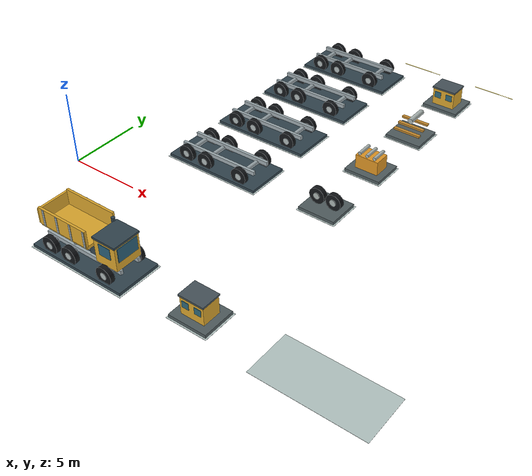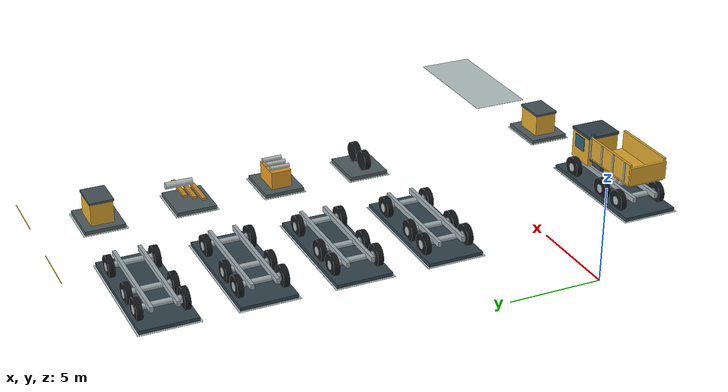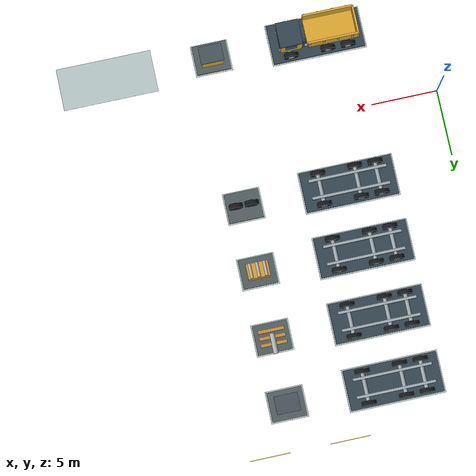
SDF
<sdf version="1.7">
 <world name="warehouse_layout_demo">
  <include><uri>model://sun</uri></include>
  <model name="vehicle_stage_4_line_4_se_pad">
   <static>true</static>
   <pose>8.0 -6.0 0.012 0 0 0</pose>
   <link name="marking">
    <visual name="visual">
     <geometry><box><size>7.2 3.2 0.012</size></box></geometry>
     <material><ambient>0.72 0.79 0.78 1</ambient><diffuse>0.72 0.79 0.78 1</diffuse></material>
    </visual>
   </link>
  </model>
  <model name="vehicle_stage_4_line_4_se">
   <static>true</static>
   <pose>8.0 -6.0 0 0 0 0</pose>
   <link name="fixture">
    <collision name="collision">
     <pose>0 0 1.9 0 0 0</pose>
     <geometry><box><size>7.0 3.0 3.8</size></box></geometry>
    </collision>
    <visual name="service_platform">
     <pose>0 0 0.11 0 0 0</pose>
     <geometry><box><size>7.0 3.0 0.22</size></box></geometry>
     <material><ambient>0.20 0.27 0.31 1</ambient><diffuse>0.20 0.27 0.31 1</diffuse></material>
    </visual>
    <visual name="chassis_rail_0">
     <pose>0 -0.66 0.85 0 0 0</pose>
     <geometry><box><size>5.9 0.19 0.28</size></box></geometry>
     <material><ambient>0.63 0.68 0.70 1</ambient><diffuse>0.63 0.68 0.70 1</diffuse></material>
    </visual>
    <visual name="haul_tire_0_0">
     <pose>-2.2 -1.18 0.63 1.57079632679 0 0</pose>
     <geometry><cylinder><radius>0.58</radius><length>0.32</length></cylinder></geometry>
     <material><ambient>0.08 0.09 0.10 1</ambient><diffuse>0.08 0.09 0.10 1</diffuse></material>
    </visual>
    <visual name="tire_hub_0_0">
     <pose>-2.2 -1.18 0.63 1.57079632679 0 0</pose>
     <geometry><cylinder><radius>0.23</radius><length>0.34</length></cylinder></geometry>
     <material><ambient>0.70 0.74 0.74 1</ambient><diffuse>0.70 0.74 0.74 1</diffuse></material>
    </visual>
    <visual name="haul_tire_0_1">
     <pose>-0.65 -1.18 0.63 1.57079632679 0 0</pose>
     <geometry><cylinder><radius>0.58</radius><length>0.32</length></cylinder></geometry>
     <material><ambient>0.08 0.09 0.10 1</ambient><diffuse>0.08 0.09 0.10 1</diffuse></material>
    </visual>
    <visual name="tire_hub_0_1">
     <pose>-0.65 -1.18 0.63 1.57079632679 0 0</pose>
     <geometry><cylinder><radius>0.23</radius><length>0.34</length></cylinder></geometry>
     <material><ambient>0.70 0.74 0.74 1</ambient><diffuse>0.70 0.74 0.74 1</diffuse></material>
    </visual>
    <visual name="haul_tire_0_2">
     <pose>2.15 -1.18 0.63 1.57079632679 0 0</pose>
     <geometry><cylinder><radius>0.58</radius><length>0.32</length></cylinder></geometry>
     <material><ambient>0.08 0.09 0.10 1</ambient><diffuse>0.08 0.09 0.10 1</diffuse></material>
    </visual>
    <visual name="tire_hub_0_2">
     <pose>2.15 -1.18 0.63 1.57079632679 0 0</pose>
     <geometry><cylinder><radius>0.23</radius><length>0.34</length></cylinder></geometry>
     <material><ambient>0.70 0.74 0.74 1</ambient><diffuse>0.70 0.74 0.74 1</diffuse></material>
    </visual>
    <visual name="chassis_rail_1">
     <pose>0 0.66 0.85 0 0 0</pose>
     <geometry><box><size>5.9 0.19 0.28</size></box></geometry>
     <material><ambient>0.63 0.68 0.70 1</ambient><diffuse>0.63 0.68 0.70 1</diffuse></material>
    </visual>
    <visual name="haul_tire_1_0">
     <pose>-2.2 1.18 0.63 1.57079632679 0 0</pose>
     <geometry><cylinder><radius>0.58</radius><length>0.32</length></cylinder></geometry>
     <material><ambient>0.08 0.09 0.10 1</ambient><diffuse>0.08 0.09 0.10 1</diffuse></material>
    </visual>
    <visual name="tire_hub_1_0">
     <pose>-2.2 1.18 0.63 1.57079632679 0 0</pose>
     <geometry><cylinder><radius>0.23</radius><length>0.34</length></cylinder></geometry>
     <material><ambient>0.70 0.74 0.74 1</ambient><diffuse>0.70 0.74 0.74 1</diffuse></material>
    </visual>
    <visual name="haul_tire_1_1">
     <pose>-0.65 1.18 0.63 1.57079632679 0 0</pose>
     <geometry><cylinder><radius>0.58</radius><length>0.32</length></cylinder></geometry>
     <material><ambient>0.08 0.09 0.10 1</ambient><diffuse>0.08 0.09 0.10 1</diffuse></material>
    </visual>
    <visual name="tire_hub_1_1">
     <pose>-0.65 1.18 0.63 1.57079632679 0 0</pose>
     <geometry><cylinder><radius>0.23</radius><length>0.34</length></cylinder></geometry>
     <material><ambient>0.70 0.74 0.74 1</ambient><diffuse>0.70 0.74 0.74 1</diffuse></material>
    </visual>
    <visual name="haul_tire_1_2">
     <pose>2.15 1.18 0.63 1.57079632679 0 0</pose>
     <geometry><cylinder><radius>0.58</radius><length>0.32</length></cylinder></geometry>
     <material><ambient>0.08 0.09 0.10 1</ambient><diffuse>0.08 0.09 0.10 1</diffuse></material>
    </visual>
    <visual name="tire_hub_1_2">
     <pose>2.15 1.18 0.63 1.57079632679 0 0</pose>
     <geometry><cylinder><radius>0.23</radius><length>0.34</length></cylinder></geometry>
     <material><ambient>0.70 0.74 0.74 1</ambient><diffuse>0.70 0.74 0.74 1</diffuse></material>
    </visual>
    <visual name="drive_axle_0">
     <pose>-2.2 0 0.68 1.57079632679 0 0</pose>
     <geometry><cylinder><radius>0.15</radius><length>2.38</length></cylinder></geometry>
     <material><ambient>0.63 0.68 0.70 1</ambient><diffuse>0.63 0.68 0.70 1</diffuse></material>
    </visual>
    <visual name="drive_axle_1">
     <pose>-0.65 0 0.68 1.57079632679 0 0</pose>
     <geometry><cylinder><radius>0.15</radius><length>2.38</length></cylinder></geometry>
     <material><ambient>0.63 0.68 0.70 1</ambient><diffuse>0.63 0.68 0.70 1</diffuse></material>
    </visual>
    <visual name="drive_axle_2">
     <pose>2.15 0 0.68 1.57079632679 0 0</pose>
     <geometry><cylinder><radius>0.15</radius><length>2.38</length></cylinder></geometry>
     <material><ambient>0.63 0.68 0.70 1</ambient><diffuse>0.63 0.68 0.70 1</diffuse></material>
    </visual>
    <visual name="diesel_engine">
     <pose>1.15 0 1.26 0 0 0</pose>
     <geometry><box><size>1.38 1.22 0.83</size></box></geometry>
     <material><ambient>0.20 0.27 0.31 1</ambient><diffuse>0.20 0.27 0.31 1</diffuse></material>
    </visual>
    <visual name="gearbox">
     <pose>0.08 0 1.12 0 0 0</pose>
     <geometry><box><size>0.82 0.76 0.6</size></box></geometry>
     <material><ambient>0.63 0.68 0.70 1</ambient><diffuse>0.63 0.68 0.70 1</diffuse></material>
    </visual>
    <visual name="radiator_fan">
     <pose>1.98 0 1.29 1.57079632679 0 0</pose>
     <geometry><cylinder><radius>0.41</radius><length>0.15</length></cylinder></geometry>
     <material><ambient>0.76 0.80 0.79 1</ambient><diffuse>0.76 0.80 0.79 1</diffuse></material>
    </visual>
    <visual name="operator_cab">
     <pose>2.08 0 1.82 0 0 0</pose>
     <geometry><box><size>1.6 1.83 1.62</size></box></geometry>
     <material><ambient>0.87 0.66 0.18 1</ambient><diffuse>0.87 0.66 0.18 1</diffuse></material>
    </visual>
    <visual name="cab_roof">
     <pose>2.08 0 2.66 0 0 0</pose>
     <geometry><box><size>1.72 1.91 0.14</size></box></geometry>
     <material><ambient>0.20 0.27 0.31 1</ambient><diffuse>0.20 0.27 0.31 1</diffuse></material>
    </visual>
    <visual name="windshield">
     <pose>2.91 0 2.03 0 0 0</pose>
     <geometry><box><size>0.045 1.48 0.91</size></box></geometry>
     <material><ambient>0.17 0.38 0.48 1</ambient><diffuse>0.17 0.38 0.48 1</diffuse></material>
    </visual>
    <visual name="exhaust_stack">
     <pose>1.14 0.76 2.15 0.0 0 0</pose>
     <geometry><cylinder><radius>0.12</radius><length>1.57</length></cylinder></geometry>
     <material><ambient>0.20 0.27 0.31 1</ambient><diffuse>0.20 0.27 0.31 1</diffuse></material>
    </visual>
    <visual name="cab_side_glass_0">
     <pose>2.11 -0.95 2.08 0 0 0</pose>
     <geometry><box><size>0.87 0.035 0.76</size></box></geometry>
     <material><ambient>0.17 0.38 0.48 1</ambient><diffuse>0.17 0.38 0.48 1</diffuse></material>
    </visual>
    <visual name="cab_side_glass_1">
     <pose>2.11 0.95 2.08 0 0 0</pose>
     <geometry><box><size>0.87 0.035 0.76</size></box></geometry>
     <material><ambient>0.17 0.38 0.48 1</ambient><diffuse>0.17 0.38 0.48 1</diffuse></material>
    </visual>
    <visual name="dump_bed_floor">
     <pose>-1.01 0 1.78 0 0 0</pose>
     <geometry><box><size>3.75 2.15 0.22</size></box></geometry>
     <material><ambient>0.87 0.66 0.18 1</ambient><diffuse>0.87 0.66 0.18 1</diffuse></material>
    </visual>
    <visual name="dump_bed_side_0">
     <pose>-1.01 -1.05 2.37 0 0 0</pose>
     <geometry><box><size>3.75 0.15 1.15</size></box></geometry>
     <material><ambient>0.87 0.66 0.18 1</ambient><diffuse>0.87 0.66 0.18 1</diffuse></material>
    </visual>
    <visual name="bed_rib_0_0">
     <pose>-2.46 -1.1235000000000002 2.37 0 0 0</pose>
     <geometry><box><size>0.13 0.08 1.1</size></box></geometry>
     <material><ambient>0.63 0.68 0.70 1</ambient><diffuse>0.63 0.68 0.70 1</diffuse></material>
    </visual>
    <visual name="bed_rib_0_1">
     <pose>-1.39 -1.1235000000000002 2.37 0 0 0</pose>
     <geometry><box><size>0.13 0.08 1.1</size></box></geometry>
     <material><ambient>0.63 0.68 0.70 1</ambient><diffuse>0.63 0.68 0.70 1</diffuse></material>
    </visual>
    <visual name="bed_rib_0_2">
     <pose>-0.32 -1.1235000000000002 2.37 0 0 0</pose>
     <geometry><box><size>0.13 0.08 1.1</size></box></geometry>
     <material><ambient>0.63 0.68 0.70 1</ambient><diffuse>0.63 0.68 0.70 1</diffuse></material>
    </visual>
    <visual name="bed_rib_0_3">
     <pose>0.75 -1.1235000000000002 2.37 0 0 0</pose>
     <geometry><box><size>0.13 0.08 1.1</size></box></geometry>
     <material><ambient>0.63 0.68 0.70 1</ambient><diffuse>0.63 0.68 0.70 1</diffuse></material>
    </visual>
    <visual name="dump_bed_side_1">
     <pose>-1.01 1.05 2.37 0 0 0</pose>
     <geometry><box><size>3.75 0.15 1.15</size></box></geometry>
     <material><ambient>0.87 0.66 0.18 1</ambient><diffuse>0.87 0.66 0.18 1</diffuse></material>
    </visual>
    <visual name="bed_rib_1_0">
     <pose>-2.46 1.1235000000000002 2.37 0 0 0</pose>
     <geometry><box><size>0.13 0.08 1.1</size></box></geometry>
     <material><ambient>0.63 0.68 0.70 1</ambient><diffuse>0.63 0.68 0.70 1</diffuse></material>
    </visual>
    <visual name="bed_rib_1_1">
     <pose>-1.39 1.1235000000000002 2.37 0 0 0</pose>
     <geometry><box><size>0.13 0.08 1.1</size></box></geometry>
     <material><ambient>0.63 0.68 0.70 1</ambient><diffuse>0.63 0.68 0.70 1</diffuse></material>
    </visual>
    <visual name="bed_rib_1_2">
     <pose>-0.32 1.1235000000000002 2.37 0 0 0</pose>
     <geometry><box><size>0.13 0.08 1.1</size></box></geometry>
     <material><ambient>0.63 0.68 0.70 1</ambient><diffuse>0.63 0.68 0.70 1</diffuse></material>
    </visual>
    <visual name="bed_rib_1_3">
     <pose>0.75 1.1235000000000002 2.37 0 0 0</pose>
     <geometry><box><size>0.13 0.08 1.1</size></box></geometry>
     <material><ambient>0.63 0.68 0.70 1</ambient><diffuse>0.63 0.68 0.70 1</diffuse></material>
    </visual>
    <visual name="rear_gate">
     <pose>-2.93 0 2.29 0 0 0</pose>
     <geometry><box><size>0.15 2.2 1.0</size></box></geometry>
     <material><ambient>0.87 0.66 0.18 1</ambient><diffuse>0.87 0.66 0.18 1</diffuse></material>
    </visual>
    <visual name="hydraulic_lift_left">
     <pose>-0.78 -0.48 1.37 0.0 0 0</pose>
     <geometry><cylinder><radius>0.18</radius><length>1.0</length></cylinder></geometry>
     <material><ambient>0.63 0.68 0.70 1</ambient><diffuse>0.63 0.68 0.70 1</diffuse></material>
    </visual>
    <visual name="hydraulic_lift_right">
     <pose>-0.78 0.48 1.37 0.0 0 0</pose>
     <geometry><cylinder><radius>0.18</radius><length>1.0</length></cylinder></geometry>
     <material><ambient>0.63 0.68 0.70 1</ambient><diffuse>0.63 0.68 0.70 1</diffuse></material>
    </visual>
   </link>
  </model>
  <model name="vehicle_stage_5_line_4_se_pad">
   <static>true</static>
   <pose>24.0 -6.0 0.012 0 0 0</pose>
   <link name="marking">
    <visual name="visual">
     <geometry><box><size>7.2 3.2 0.012</size></box></geometry>
     <material><ambient>0.72 0.79 0.78 1</ambient><diffuse>0.72 0.79 0.78 1</diffuse></material>
    </visual>
   </link>
  </model>
  <model name="assembly_kit_1_line_4_se_pad">
   <static>true</static>
   <pose>16.0 -6.0 0.012 0 0 0</pose>
   <link name="marking">
    <visual name="visual">
     <geometry><box><size>2.8000000000000003 2.4000000000000004 0.012</size></box></geometry>
     <material><ambient>0.72 0.79 0.78 1</ambient><diffuse>0.72 0.79 0.78 1</diffuse></material>
    </visual>
   </link>
  </model>
  <model name="assembly_kit_1_line_4_se">
   <static>true</static>
   <pose>16.0 -6.0 0 0 0 0</pose>
   <link name="fixture">
    <collision name="collision">
     <pose>0 0 0.95 0 0 0</pose>
     <geometry><box><size>2.6 2.2 1.9</size></box></geometry>
    </collision>
    <visual name="kit_frame">
     <pose>0 0 0.12 0 0 0</pose>
     <geometry><box><size>2.6 2.2 0.24</size></box></geometry>
     <material><ambient>0.32 0.37 0.38 1</ambient><diffuse>0.32 0.37 0.38 1</diffuse></material>
    </visual>
    <visual name="cab_module">
     <pose>0 0 0.8 0 0 0</pose>
     <geometry><box><size>1.62 1.25 1.35</size></box></geometry>
     <material><ambient>0.87 0.66 0.18 1</ambient><diffuse>0.87 0.66 0.18 1</diffuse></material>
    </visual>
    <visual name="cab_window_0">
     <pose>-0.43 -0.64 1.02 0 0 0</pose>
     <geometry><box><size>0.47 0.03 0.45</size></box></geometry>
     <material><ambient>0.19 0.41 0.47 1</ambient><diffuse>0.19 0.41 0.47 1</diffuse></material>
    </visual>
    <visual name="cab_window_1">
     <pose>0.43 -0.64 1.02 0 0 0</pose>
     <geometry><box><size>0.47 0.03 0.45</size></box></geometry>
     <material><ambient>0.19 0.41 0.47 1</ambient><diffuse>0.19 0.41 0.47 1</diffuse></material>
    </visual>
    <visual name="cab_roof">
     <pose>0 0 1.52 0 0 0</pose>
     <geometry><box><size>1.75 1.34 0.12</size></box></geometry>
     <material><ambient>0.28 0.33 0.36 1</ambient><diffuse>0.28 0.33 0.36 1</diffuse></material>
    </visual>
   </link>
  </model>
  <model name="vehicle_stage_1_line_1_ne_pad">
   <static>true</static>
   <pose>8.0 5.5 0.012 0 0 0</pose>
   <link name="marking">
    <visual name="visual">
     <geometry><box><size>7.2 3.2 0.012</size></box></geometry>
     <material><ambient>0.72 0.79 0.78 1</ambient><diffuse>0.72 0.79 0.78 1</diffuse></material>
    </visual>
   </link>
  </model>
  <model name="vehicle_stage_1_line_1_ne">
   <static>true</static>
   <pose>8.0 5.5 0 0 0 0</pose>
   <link name="fixture">
    <collision name="collision">
     <pose>0 0 1.9 0 0 0</pose>
     <geometry><box><size>7.0 3.0 3.8</size></box></geometry>
    </collision>
    <visual name="service_platform">
     <pose>0 0 0.11 0 0 0</pose>
     <geometry><box><size>7.0 3.0 0.22</size></box></geometry>
     <material><ambient>0.20 0.27 0.31 1</ambient><diffuse>0.20 0.27 0.31 1</diffuse></material>
    </visual>
    <visual name="chassis_rail_0">
     <pose>0 -0.66 0.85 0 0 0</pose>
     <geometry><box><size>5.9 0.19 0.28</size></box></geometry>
     <material><ambient>0.63 0.68 0.70 1</ambient><diffuse>0.63 0.68 0.70 1</diffuse></material>
    </visual>
    <visual name="haul_tire_0_0">
     <pose>-2.2 -1.18 0.63 1.57079632679 0 0</pose>
     <geometry><cylinder><radius>0.58</radius><length>0.32</length></cylinder></geometry>
     <material><ambient>0.08 0.09 0.10 1</ambient><diffuse>0.08 0.09 0.10 1</diffuse></material>
    </visual>
    <visual name="tire_hub_0_0">
     <pose>-2.2 -1.18 0.63 1.57079632679 0 0</pose>
     <geometry><cylinder><radius>0.23</radius><length>0.34</length></cylinder></geometry>
     <material><ambient>0.70 0.74 0.74 1</ambient><diffuse>0.70 0.74 0.74 1</diffuse></material>
    </visual>
    <visual name="haul_tire_0_1">
     <pose>-0.65 -1.18 0.63 1.57079632679 0 0</pose>
     <geometry><cylinder><radius>0.58</radius><length>0.32</length></cylinder></geometry>
     <material><ambient>0.08 0.09 0.10 1</ambient><diffuse>0.08 0.09 0.10 1</diffuse></material>
    </visual>
    <visual name="tire_hub_0_1">
     <pose>-0.65 -1.18 0.63 1.57079632679 0 0</pose>
     <geometry><cylinder><radius>0.23</radius><length>0.34</length></cylinder></geometry>
     <material><ambient>0.70 0.74 0.74 1</ambient><diffuse>0.70 0.74 0.74 1</diffuse></material>
    </visual>
    <visual name="haul_tire_0_2">
     <pose>2.15 -1.18 0.63 1.57079632679 0 0</pose>
     <geometry><cylinder><radius>0.58</radius><length>0.32</length></cylinder></geometry>
     <material><ambient>0.08 0.09 0.10 1</ambient><diffuse>0.08 0.09 0.10 1</diffuse></material>
    </visual>
    <visual name="tire_hub_0_2">
     <pose>2.15 -1.18 0.63 1.57079632679 0 0</pose>
     <geometry><cylinder><radius>0.23</radius><length>0.34</length></cylinder></geometry>
     <material><ambient>0.70 0.74 0.74 1</ambient><diffuse>0.70 0.74 0.74 1</diffuse></material>
    </visual>
    <visual name="chassis_rail_1">
     <pose>0 0.66 0.85 0 0 0</pose>
     <geometry><box><size>5.9 0.19 0.28</size></box></geometry>
     <material><ambient>0.63 0.68 0.70 1</ambient><diffuse>0.63 0.68 0.70 1</diffuse></material>
    </visual>
    <visual name="haul_tire_1_0">
     <pose>-2.2 1.18 0.63 1.57079632679 0 0</pose>
     <geometry><cylinder><radius>0.58</radius><length>0.32</length></cylinder></geometry>
     <material><ambient>0.08 0.09 0.10 1</ambient><diffuse>0.08 0.09 0.10 1</diffuse></material>
    </visual>
    <visual name="tire_hub_1_0">
     <pose>-2.2 1.18 0.63 1.57079632679 0 0</pose>
     <geometry><cylinder><radius>0.23</radius><length>0.34</length></cylinder></geometry>
     <material><ambient>0.70 0.74 0.74 1</ambient><diffuse>0.70 0.74 0.74 1</diffuse></material>
    </visual>
    <visual name="haul_tire_1_1">
     <pose>-0.65 1.18 0.63 1.57079632679 0 0</pose>
     <geometry><cylinder><radius>0.58</radius><length>0.32</length></cylinder></geometry>
     <material><ambient>0.08 0.09 0.10 1</ambient><diffuse>0.08 0.09 0.10 1</diffuse></material>
    </visual>
    <visual name="tire_hub_1_1">
     <pose>-0.65 1.18 0.63 1.57079632679 0 0</pose>
     <geometry><cylinder><radius>0.23</radius><length>0.34</length></cylinder></geometry>
     <material><ambient>0.70 0.74 0.74 1</ambient><diffuse>0.70 0.74 0.74 1</diffuse></material>
    </visual>
    <visual name="haul_tire_1_2">
     <pose>2.15 1.18 0.63 1.57079632679 0 0</pose>
     <geometry><cylinder><radius>0.58</radius><length>0.32</length></cylinder></geometry>
     <material><ambient>0.08 0.09 0.10 1</ambient><diffuse>0.08 0.09 0.10 1</diffuse></material>
    </visual>
    <visual name="tire_hub_1_2">
     <pose>2.15 1.18 0.63 1.57079632679 0 0</pose>
     <geometry><cylinder><radius>0.23</radius><length>0.34</length></cylinder></geometry>
     <material><ambient>0.70 0.74 0.74 1</ambient><diffuse>0.70 0.74 0.74 1</diffuse></material>
    </visual>
    <visual name="drive_axle_0">
     <pose>-2.2 0 0.68 1.57079632679 0 0</pose>
     <geometry><cylinder><radius>0.15</radius><length>2.38</length></cylinder></geometry>
     <material><ambient>0.63 0.68 0.70 1</ambient><diffuse>0.63 0.68 0.70 1</diffuse></material>
    </visual>
    <visual name="drive_axle_1">
     <pose>-0.65 0 0.68 1.57079632679 0 0</pose>
     <geometry><cylinder><radius>0.15</radius><length>2.38</length></cylinder></geometry>
     <material><ambient>0.63 0.68 0.70 1</ambient><diffuse>0.63 0.68 0.70 1</diffuse></material>
    </visual>
    <visual name="drive_axle_2">
     <pose>2.15 0 0.68 1.57079632679 0 0</pose>
     <geometry><cylinder><radius>0.15</radius><length>2.38</length></cylinder></geometry>
     <material><ambient>0.63 0.68 0.70 1</ambient><diffuse>0.63 0.68 0.70 1</diffuse></material>
    </visual>
   </link>
  </model>
  <model name="assembly_kit_1_line_1_ne_pad">
   <static>true</static>
   <pose>16.0 5.5 0.012 0 0 0</pose>
   <link name="marking">
    <visual name="visual">
     <geometry><box><size>2.8000000000000003 2.4000000000000004 0.012</size></box></geometry>
     <material><ambient>0.72 0.79 0.78 1</ambient><diffuse>0.72 0.79 0.78 1</diffuse></material>
    </visual>
   </link>
  </model>
  <model name="assembly_kit_1_line_1_ne">
   <static>true</static>
   <pose>16.0 5.5 0 0 0 0</pose>
   <link name="fixture">
    <collision name="collision">
     <pose>0 0 0.95 0 0 0</pose>
     <geometry><box><size>2.6 2.2 1.9</size></box></geometry>
    </collision>
    <visual name="kit_frame">
     <pose>0 0 0.12 0 0 0</pose>
     <geometry><box><size>2.6 2.2 0.24</size></box></geometry>
     <material><ambient>0.32 0.37 0.38 1</ambient><diffuse>0.32 0.37 0.38 1</diffuse></material>
    </visual>
    <visual name="spare_tire_0">
     <pose>-0.6 0 0.8 1.57079632679 0 0</pose>
     <geometry><cylinder><radius>0.55</radius><length>0.35</length></cylinder></geometry>
     <material><ambient>0.08 0.09 0.10 1</ambient><diffuse>0.08 0.09 0.10 1</diffuse></material>
    </visual>
    <visual name="tire_hub_0">
     <pose>-0.6 -0.2 0.8 1.57079632679 0 0</pose>
     <geometry><cylinder><radius>0.22</radius><length>0.05</length></cylinder></geometry>
     <material><ambient>0.69 0.73 0.72 1</ambient><diffuse>0.69 0.73 0.72 1</diffuse></material>
    </visual>
    <visual name="spare_tire_1">
     <pose>0.6 0 0.8 1.57079632679 0 0</pose>
     <geometry><cylinder><radius>0.55</radius><length>0.35</length></cylinder></geometry>
     <material><ambient>0.08 0.09 0.10 1</ambient><diffuse>0.08 0.09 0.10 1</diffuse></material>
    </visual>
    <visual name="tire_hub_1">
     <pose>0.6 -0.2 0.8 1.57079632679 0 0</pose>
     <geometry><cylinder><radius>0.22</radius><length>0.05</length></cylinder></geometry>
     <material><ambient>0.69 0.73 0.72 1</ambient><diffuse>0.69 0.73 0.72 1</diffuse></material>
    </visual>
   </link>
  </model>
  <model name="vehicle_stage_1_line_2_ne_pad">
   <static>true</static>
   <pose>8.0 10.5 0.012 0 0 0</pose>
   <link name="marking">
    <visual name="visual">
     <geometry><box><size>7.2 3.2 0.012</size></box></geometry>
     <material><ambient>0.72 0.79 0.78 1</ambient><diffuse>0.72 0.79 0.78 1</diffuse></material>
    </visual>
   </link>
  </model>
  <model name="vehicle_stage_1_line_2_ne">
   <static>true</static>
   <pose>8.0 10.5 0 0 0 0</pose>
   <link name="fixture">
    <collision name="collision">
     <pose>0 0 1.9 0 0 0</pose>
     <geometry><box><size>7.0 3.0 3.8</size></box></geometry>
    </collision>
    <visual name="service_platform">
     <pose>0 0 0.11 0 0 0</pose>
     <geometry><box><size>7.0 3.0 0.22</size></box></geometry>
     <material><ambient>0.20 0.27 0.31 1</ambient><diffuse>0.20 0.27 0.31 1</diffuse></material>
    </visual>
    <visual name="chassis_rail_0">
     <pose>0 -0.66 0.85 0 0 0</pose>
     <geometry><box><size>5.9 0.19 0.28</size></box></geometry>
     <material><ambient>0.63 0.68 0.70 1</ambient><diffuse>0.63 0.68 0.70 1</diffuse></material>
    </visual>
    <visual name="haul_tire_0_0">
     <pose>-2.2 -1.18 0.63 1.57079632679 0 0</pose>
     <geometry><cylinder><radius>0.58</radius><length>0.32</length></cylinder></geometry>
     <material><ambient>0.08 0.09 0.10 1</ambient><diffuse>0.08 0.09 0.10 1</diffuse></material>
    </visual>
    <visual name="tire_hub_0_0">
     <pose>-2.2 -1.18 0.63 1.57079632679 0 0</pose>
     <geometry><cylinder><radius>0.23</radius><length>0.34</length></cylinder></geometry>
     <material><ambient>0.70 0.74 0.74 1</ambient><diffuse>0.70 0.74 0.74 1</diffuse></material>
    </visual>
    <visual name="haul_tire_0_1">
     <pose>-0.65 -1.18 0.63 1.57079632679 0 0</pose>
     <geometry><cylinder><radius>0.58</radius><length>0.32</length></cylinder></geometry>
     <material><ambient>0.08 0.09 0.10 1</ambient><diffuse>0.08 0.09 0.10 1</diffuse></material>
    </visual>
    <visual name="tire_hub_0_1">
     <pose>-0.65 -1.18 0.63 1.57079632679 0 0</pose>
     <geometry><cylinder><radius>0.23</radius><length>0.34</length></cylinder></geometry>
     <material><ambient>0.70 0.74 0.74 1</ambient><diffuse>0.70 0.74 0.74 1</diffuse></material>
    </visual>
    <visual name="haul_tire_0_2">
     <pose>2.15 -1.18 0.63 1.57079632679 0 0</pose>
     <geometry><cylinder><radius>0.58</radius><length>0.32</length></cylinder></geometry>
     <material><ambient>0.08 0.09 0.10 1</ambient><diffuse>0.08 0.09 0.10 1</diffuse></material>
    </visual>
    <visual name="tire_hub_0_2">
     <pose>2.15 -1.18 0.63 1.57079632679 0 0</pose>
     <geometry><cylinder><radius>0.23</radius><length>0.34</length></cylinder></geometry>
     <material><ambient>0.70 0.74 0.74 1</ambient><diffuse>0.70 0.74 0.74 1</diffuse></material>
    </visual>
    <visual name="chassis_rail_1">
     <pose>0 0.66 0.85 0 0 0</pose>
     <geometry><box><size>5.9 0.19 0.28</size></box></geometry>
     <material><ambient>0.63 0.68 0.70 1</ambient><diffuse>0.63 0.68 0.70 1</diffuse></material>
    </visual>
    <visual name="haul_tire_1_0">
     <pose>-2.2 1.18 0.63 1.57079632679 0 0</pose>
     <geometry><cylinder><radius>0.58</radius><length>0.32</length></cylinder></geometry>
     <material><ambient>0.08 0.09 0.10 1</ambient><diffuse>0.08 0.09 0.10 1</diffuse></material>
    </visual>
    <visual name="tire_hub_1_0">
     <pose>-2.2 1.18 0.63 1.57079632679 0 0</pose>
     <geometry><cylinder><radius>0.23</radius><length>0.34</length></cylinder></geometry>
     <material><ambient>0.70 0.74 0.74 1</ambient><diffuse>0.70 0.74 0.74 1</diffuse></material>
    </visual>
    <visual name="haul_tire_1_1">
     <pose>-0.65 1.18 0.63 1.57079632679 0 0</pose>
     <geometry><cylinder><radius>0.58</radius><length>0.32</length></cylinder></geometry>
     <material><ambient>0.08 0.09 0.10 1</ambient><diffuse>0.08 0.09 0.10 1</diffuse></material>
    </visual>
    <visual name="tire_hub_1_1">
     <pose>-0.65 1.18 0.63 1.57079632679 0 0</pose>
     <geometry><cylinder><radius>0.23</radius><length>0.34</length></cylinder></geometry>
     <material><ambient>0.70 0.74 0.74 1</ambient><diffuse>0.70 0.74 0.74 1</diffuse></material>
    </visual>
    <visual name="haul_tire_1_2">
     <pose>2.15 1.18 0.63 1.57079632679 0 0</pose>
     <geometry><cylinder><radius>0.58</radius><length>0.32</length></cylinder></geometry>
     <material><ambient>0.08 0.09 0.10 1</ambient><diffuse>0.08 0.09 0.10 1</diffuse></material>
    </visual>
    <visual name="tire_hub_1_2">
     <pose>2.15 1.18 0.63 1.57079632679 0 0</pose>
     <geometry><cylinder><radius>0.23</radius><length>0.34</length></cylinder></geometry>
     <material><ambient>0.70 0.74 0.74 1</ambient><diffuse>0.70 0.74 0.74 1</diffuse></material>
    </visual>
    <visual name="drive_axle_0">
     <pose>-2.2 0 0.68 1.57079632679 0 0</pose>
     <geometry><cylinder><radius>0.15</radius><length>2.38</length></cylinder></geometry>
     <material><ambient>0.63 0.68 0.70 1</ambient><diffuse>0.63 0.68 0.70 1</diffuse></material>
    </visual>
    <visual name="drive_axle_1">
     <pose>-0.65 0 0.68 1.57079632679 0 0</pose>
     <geometry><cylinder><radius>0.15</radius><length>2.38</length></cylinder></geometry>
     <material><ambient>0.63 0.68 0.70 1</ambient><diffuse>0.63 0.68 0.70 1</diffuse></material>
    </visual>
    <visual name="drive_axle_2">
     <pose>2.15 0 0.68 1.57079632679 0 0</pose>
     <geometry><cylinder><radius>0.15</radius><length>2.38</length></cylinder></geometry>
     <material><ambient>0.63 0.68 0.70 1</ambient><diffuse>0.63 0.68 0.70 1</diffuse></material>
    </visual>
   </link>
  </model>
  <model name="assembly_kit_1_line_2_ne_pad">
   <static>true</static>
   <pose>16.0 10.5 0.012 0 0 0</pose>
   <link name="marking">
    <visual name="visual">
     <geometry><box><size>2.8000000000000003 2.4000000000000004 0.012</size></box></geometry>
     <material><ambient>0.72 0.79 0.78 1</ambient><diffuse>0.72 0.79 0.78 1</diffuse></material>
    </visual>
   </link>
  </model>
  <model name="assembly_kit_1_line_2_ne">
   <static>true</static>
   <pose>16.0 10.5 0 0 0 0</pose>
   <link name="fixture">
    <collision name="collision">
     <pose>0 0 0.95 0 0 0</pose>
     <geometry><box><size>2.6 2.2 1.9</size></box></geometry>
    </collision>
    <visual name="kit_frame">
     <pose>0 0 0.12 0 0 0</pose>
     <geometry><box><size>2.6 2.2 0.24</size></box></geometry>
     <material><ambient>0.32 0.37 0.38 1</ambient><diffuse>0.32 0.37 0.38 1</diffuse></material>
    </visual>
    <visual name="engine_crate">
     <pose>0 0 0.7 0 0 0</pose>
     <geometry><box><size>1.65 1.14 1.02</size></box></geometry>
     <material><ambient>0.89 0.60 0.15 1</ambient><diffuse>0.89 0.60 0.15 1</diffuse></material>
    </visual>
    <visual name="pipe_0">
     <pose>-0.55 0 1.38 1.57079632679 0 0</pose>
     <geometry><cylinder><radius>0.12</radius><length>1.1</length></cylinder></geometry>
     <material><ambient>0.69 0.73 0.72 1</ambient><diffuse>0.69 0.73 0.72 1</diffuse></material>
    </visual>
    <visual name="pipe_1">
     <pose>0 0 1.38 1.57079632679 0 0</pose>
     <geometry><cylinder><radius>0.12</radius><length>1.1</length></cylinder></geometry>
     <material><ambient>0.69 0.73 0.72 1</ambient><diffuse>0.69 0.73 0.72 1</diffuse></material>
    </visual>
    <visual name="pipe_2">
     <pose>0.55 0 1.38 1.57079632679 0 0</pose>
     <geometry><cylinder><radius>0.12</radius><length>1.1</length></cylinder></geometry>
     <material><ambient>0.69 0.73 0.72 1</ambient><diffuse>0.69 0.73 0.72 1</diffuse></material>
    </visual>
   </link>
  </model>
  <model name="vehicle_stage_1_line_3_ne_pad">
   <static>true</static>
   <pose>8.0 15.5 0.012 0 0 0</pose>
   <link name="marking">
    <visual name="visual">
     <geometry><box><size>7.2 3.2 0.012</size></box></geometry>
     <material><ambient>0.72 0.79 0.78 1</ambient><diffuse>0.72 0.79 0.78 1</diffuse></material>
    </visual>
   </link>
  </model>
  <model name="vehicle_stage_1_line_3_ne">
   <static>true</static>
   <pose>8.0 15.5 0 0 0 0</pose>
   <link name="fixture">
    <collision name="collision">
     <pose>0 0 1.9 0 0 0</pose>
     <geometry><box><size>7.0 3.0 3.8</size></box></geometry>
    </collision>
    <visual name="service_platform">
     <pose>0 0 0.11 0 0 0</pose>
     <geometry><box><size>7.0 3.0 0.22</size></box></geometry>
     <material><ambient>0.20 0.27 0.31 1</ambient><diffuse>0.20 0.27 0.31 1</diffuse></material>
    </visual>
    <visual name="chassis_rail_0">
     <pose>0 -0.66 0.85 0 0 0</pose>
     <geometry><box><size>5.9 0.19 0.28</size></box></geometry>
     <material><ambient>0.63 0.68 0.70 1</ambient><diffuse>0.63 0.68 0.70 1</diffuse></material>
    </visual>
    <visual name="haul_tire_0_0">
     <pose>-2.2 -1.18 0.63 1.57079632679 0 0</pose>
     <geometry><cylinder><radius>0.58</radius><length>0.32</length></cylinder></geometry>
     <material><ambient>0.08 0.09 0.10 1</ambient><diffuse>0.08 0.09 0.10 1</diffuse></material>
    </visual>
    <visual name="tire_hub_0_0">
     <pose>-2.2 -1.18 0.63 1.57079632679 0 0</pose>
     <geometry><cylinder><radius>0.23</radius><length>0.34</length></cylinder></geometry>
     <material><ambient>0.70 0.74 0.74 1</ambient><diffuse>0.70 0.74 0.74 1</diffuse></material>
    </visual>
    <visual name="haul_tire_0_1">
     <pose>-0.65 -1.18 0.63 1.57079632679 0 0</pose>
     <geometry><cylinder><radius>0.58</radius><length>0.32</length></cylinder></geometry>
     <material><ambient>0.08 0.09 0.10 1</ambient><diffuse>0.08 0.09 0.10 1</diffuse></material>
    </visual>
    <visual name="tire_hub_0_1">
     <pose>-0.65 -1.18 0.63 1.57079632679 0 0</pose>
     <geometry><cylinder><radius>0.23</radius><length>0.34</length></cylinder></geometry>
     <material><ambient>0.70 0.74 0.74 1</ambient><diffuse>0.70 0.74 0.74 1</diffuse></material>
    </visual>
    <visual name="haul_tire_0_2">
     <pose>2.15 -1.18 0.63 1.57079632679 0 0</pose>
     <geometry><cylinder><radius>0.58</radius><length>0.32</length></cylinder></geometry>
     <material><ambient>0.08 0.09 0.10 1</ambient><diffuse>0.08 0.09 0.10 1</diffuse></material>
    </visual>
    <visual name="tire_hub_0_2">
     <pose>2.15 -1.18 0.63 1.57079632679 0 0</pose>
     <geometry><cylinder><radius>0.23</radius><length>0.34</length></cylinder></geometry>
     <material><ambient>0.70 0.74 0.74 1</ambient><diffuse>0.70 0.74 0.74 1</diffuse></material>
    </visual>
    <visual name="chassis_rail_1">
     <pose>0 0.66 0.85 0 0 0</pose>
     <geometry><box><size>5.9 0.19 0.28</size></box></geometry>
     <material><ambient>0.63 0.68 0.70 1</ambient><diffuse>0.63 0.68 0.70 1</diffuse></material>
    </visual>
    <visual name="haul_tire_1_0">
     <pose>-2.2 1.18 0.63 1.57079632679 0 0</pose>
     <geometry><cylinder><radius>0.58</radius><length>0.32</length></cylinder></geometry>
     <material><ambient>0.08 0.09 0.10 1</ambient><diffuse>0.08 0.09 0.10 1</diffuse></material>
    </visual>
    <visual name="tire_hub_1_0">
     <pose>-2.2 1.18 0.63 1.57079632679 0 0</pose>
     <geometry><cylinder><radius>0.23</radius><length>0.34</length></cylinder></geometry>
     <material><ambient>0.70 0.74 0.74 1</ambient><diffuse>0.70 0.74 0.74 1</diffuse></material>
    </visual>
    <visual name="haul_tire_1_1">
     <pose>-0.65 1.18 0.63 1.57079632679 0 0</pose>
     <geometry><cylinder><radius>0.58</radius><length>0.32</length></cylinder></geometry>
     <material><ambient>0.08 0.09 0.10 1</ambient><diffuse>0.08 0.09 0.10 1</diffuse></material>
    </visual>
    <visual name="tire_hub_1_1">
     <pose>-0.65 1.18 0.63 1.57079632679 0 0</pose>
     <geometry><cylinder><radius>0.23</radius><length>0.34</length></cylinder></geometry>
     <material><ambient>0.70 0.74 0.74 1</ambient><diffuse>0.70 0.74 0.74 1</diffuse></material>
    </visual>
    <visual name="haul_tire_1_2">
     <pose>2.15 1.18 0.63 1.57079632679 0 0</pose>
     <geometry><cylinder><radius>0.58</radius><length>0.32</length></cylinder></geometry>
     <material><ambient>0.08 0.09 0.10 1</ambient><diffuse>0.08 0.09 0.10 1</diffuse></material>
    </visual>
    <visual name="tire_hub_1_2">
     <pose>2.15 1.18 0.63 1.57079632679 0 0</pose>
     <geometry><cylinder><radius>0.23</radius><length>0.34</length></cylinder></geometry>
     <material><ambient>0.70 0.74 0.74 1</ambient><diffuse>0.70 0.74 0.74 1</diffuse></material>
    </visual>
    <visual name="drive_axle_0">
     <pose>-2.2 0 0.68 1.57079632679 0 0</pose>
     <geometry><cylinder><radius>0.15</radius><length>2.38</length></cylinder></geometry>
     <material><ambient>0.63 0.68 0.70 1</ambient><diffuse>0.63 0.68 0.70 1</diffuse></material>
    </visual>
    <visual name="drive_axle_1">
     <pose>-0.65 0 0.68 1.57079632679 0 0</pose>
     <geometry><cylinder><radius>0.15</radius><length>2.38</length></cylinder></geometry>
     <material><ambient>0.63 0.68 0.70 1</ambient><diffuse>0.63 0.68 0.70 1</diffuse></material>
    </visual>
    <visual name="drive_axle_2">
     <pose>2.15 0 0.68 1.57079632679 0 0</pose>
     <geometry><cylinder><radius>0.15</radius><length>2.38</length></cylinder></geometry>
     <material><ambient>0.63 0.68 0.70 1</ambient><diffuse>0.63 0.68 0.70 1</diffuse></material>
    </visual>
   </link>
  </model>
  <model name="assembly_kit_1_line_3_ne_pad">
   <static>true</static>
   <pose>16.0 15.5 0.012 0 0 0</pose>
   <link name="marking">
    <visual name="visual">
     <geometry><box><size>2.8000000000000003 2.4000000000000004 0.012</size></box></geometry>
     <material><ambient>0.72 0.79 0.78 1</ambient><diffuse>0.72 0.79 0.78 1</diffuse></material>
    </visual>
   </link>
  </model>
  <model name="assembly_kit_1_line_3_ne">
   <static>true</static>
   <pose>16.0 15.5 0 0 0 0</pose>
   <link name="fixture">
    <collision name="collision">
     <pose>0 0 0.95 0 0 0</pose>
     <geometry><box><size>2.6 2.2 1.9</size></box></geometry>
    </collision>
    <visual name="kit_frame">
     <pose>0 0 0.12 0 0 0</pose>
     <geometry><box><size>2.6 2.2 0.24</size></box></geometry>
     <material><ambient>0.32 0.37 0.38 1</ambient><diffuse>0.32 0.37 0.38 1</diffuse></material>
    </visual>
    <visual name="bed_panel_0">
     <pose>0 -0.52 0.58 0 0 0</pose>
     <geometry><box><size>1.96 0.24 0.13</size></box></geometry>
     <material><ambient>0.79 0.55 0.18 1</ambient><diffuse>0.79 0.55 0.18 1</diffuse></material>
    </visual>
    <visual name="bed_panel_1">
     <pose>0 0 0.78 0 0 0</pose>
     <geometry><box><size>1.96 0.24 0.13</size></box></geometry>
     <material><ambient>0.79 0.55 0.18 1</ambient><diffuse>0.79 0.55 0.18 1</diffuse></material>
    </visual>
    <visual name="bed_panel_2">
     <pose>0 0.52 0.98 0 0 0</pose>
     <geometry><box><size>1.96 0.24 0.13</size></box></geometry>
     <material><ambient>0.79 0.55 0.18 1</ambient><diffuse>0.79 0.55 0.18 1</diffuse></material>
    </visual>
    <visual name="lift_ram">
     <pose>0 0.54 1.28 1.57079632679 0 0</pose>
     <geometry><cylinder><radius>0.19</radius><length>1.5</length></cylinder></geometry>
     <material><ambient>0.69 0.73 0.72 1</ambient><diffuse>0.69 0.73 0.72 1</diffuse></material>
    </visual>
   </link>
  </model>
  <model name="vehicle_stage_1_line_4_ne_pad">
   <static>true</static>
   <pose>8.0 20.5 0.012 0 0 0</pose>
   <link name="marking">
    <visual name="visual">
     <geometry><box><size>7.2 3.2 0.012</size></box></geometry>
     <material><ambient>0.72 0.79 0.78 1</ambient><diffuse>0.72 0.79 0.78 1</diffuse></material>
    </visual>
   </link>
  </model>
  <model name="vehicle_stage_1_line_4_ne">
   <static>true</static>
   <pose>8.0 20.5 0 0 0 0</pose>
   <link name="fixture">
    <collision name="collision">
     <pose>0 0 1.9 0 0 0</pose>
     <geometry><box><size>7.0 3.0 3.8</size></box></geometry>
    </collision>
    <visual name="service_platform">
     <pose>0 0 0.11 0 0 0</pose>
     <geometry><box><size>7.0 3.0 0.22</size></box></geometry>
     <material><ambient>0.20 0.27 0.31 1</ambient><diffuse>0.20 0.27 0.31 1</diffuse></material>
    </visual>
    <visual name="chassis_rail_0">
     <pose>0 -0.66 0.85 0 0 0</pose>
     <geometry><box><size>5.9 0.19 0.28</size></box></geometry>
     <material><ambient>0.63 0.68 0.70 1</ambient><diffuse>0.63 0.68 0.70 1</diffuse></material>
    </visual>
    <visual name="haul_tire_0_0">
     <pose>-2.2 -1.18 0.63 1.57079632679 0 0</pose>
     <geometry><cylinder><radius>0.58</radius><length>0.32</length></cylinder></geometry>
     <material><ambient>0.08 0.09 0.10 1</ambient><diffuse>0.08 0.09 0.10 1</diffuse></material>
    </visual>
    <visual name="tire_hub_0_0">
     <pose>-2.2 -1.18 0.63 1.57079632679 0 0</pose>
     <geometry><cylinder><radius>0.23</radius><length>0.34</length></cylinder></geometry>
     <material><ambient>0.70 0.74 0.74 1</ambient><diffuse>0.70 0.74 0.74 1</diffuse></material>
    </visual>
    <visual name="haul_tire_0_1">
     <pose>-0.65 -1.18 0.63 1.57079632679 0 0</pose>
     <geometry><cylinder><radius>0.58</radius><length>0.32</length></cylinder></geometry>
     <material><ambient>0.08 0.09 0.10 1</ambient><diffuse>0.08 0.09 0.10 1</diffuse></material>
    </visual>
    <visual name="tire_hub_0_1">
     <pose>-0.65 -1.18 0.63 1.57079632679 0 0</pose>
     <geometry><cylinder><radius>0.23</radius><length>0.34</length></cylinder></geometry>
     <material><ambient>0.70 0.74 0.74 1</ambient><diffuse>0.70 0.74 0.74 1</diffuse></material>
    </visual>
    <visual name="haul_tire_0_2">
     <pose>2.15 -1.18 0.63 1.57079632679 0 0</pose>
     <geometry><cylinder><radius>0.58</radius><length>0.32</length></cylinder></geometry>
     <material><ambient>0.08 0.09 0.10 1</ambient><diffuse>0.08 0.09 0.10 1</diffuse></material>
    </visual>
    <visual name="tire_hub_0_2">
     <pose>2.15 -1.18 0.63 1.57079632679 0 0</pose>
     <geometry><cylinder><radius>0.23</radius><length>0.34</length></cylinder></geometry>
     <material><ambient>0.70 0.74 0.74 1</ambient><diffuse>0.70 0.74 0.74 1</diffuse></material>
    </visual>
    <visual name="chassis_rail_1">
     <pose>0 0.66 0.85 0 0 0</pose>
     <geometry><box><size>5.9 0.19 0.28</size></box></geometry>
     <material><ambient>0.63 0.68 0.70 1</ambient><diffuse>0.63 0.68 0.70 1</diffuse></material>
    </visual>
    <visual name="haul_tire_1_0">
     <pose>-2.2 1.18 0.63 1.57079632679 0 0</pose>
     <geometry><cylinder><radius>0.58</radius><length>0.32</length></cylinder></geometry>
     <material><ambient>0.08 0.09 0.10 1</ambient><diffuse>0.08 0.09 0.10 1</diffuse></material>
    </visual>
    <visual name="tire_hub_1_0">
     <pose>-2.2 1.18 0.63 1.57079632679 0 0</pose>
     <geometry><cylinder><radius>0.23</radius><length>0.34</length></cylinder></geometry>
     <material><ambient>0.70 0.74 0.74 1</ambient><diffuse>0.70 0.74 0.74 1</diffuse></material>
    </visual>
    <visual name="haul_tire_1_1">
     <pose>-0.65 1.18 0.63 1.57079632679 0 0</pose>
     <geometry><cylinder><radius>0.58</radius><length>0.32</length></cylinder></geometry>
     <material><ambient>0.08 0.09 0.10 1</ambient><diffuse>0.08 0.09 0.10 1</diffuse></material>
    </visual>
    <visual name="tire_hub_1_1">
     <pose>-0.65 1.18 0.63 1.57079632679 0 0</pose>
     <geometry><cylinder><radius>0.23</radius><length>0.34</length></cylinder></geometry>
     <material><ambient>0.70 0.74 0.74 1</ambient><diffuse>0.70 0.74 0.74 1</diffuse></material>
    </visual>
    <visual name="haul_tire_1_2">
     <pose>2.15 1.18 0.63 1.57079632679 0 0</pose>
     <geometry><cylinder><radius>0.58</radius><length>0.32</length></cylinder></geometry>
     <material><ambient>0.08 0.09 0.10 1</ambient><diffuse>0.08 0.09 0.10 1</diffuse></material>
    </visual>
    <visual name="tire_hub_1_2">
     <pose>2.15 1.18 0.63 1.57079632679 0 0</pose>
     <geometry><cylinder><radius>0.23</radius><length>0.34</length></cylinder></geometry>
     <material><ambient>0.70 0.74 0.74 1</ambient><diffuse>0.70 0.74 0.74 1</diffuse></material>
    </visual>
    <visual name="drive_axle_0">
     <pose>-2.2 0 0.68 1.57079632679 0 0</pose>
     <geometry><cylinder><radius>0.15</radius><length>2.38</length></cylinder></geometry>
     <material><ambient>0.63 0.68 0.70 1</ambient><diffuse>0.63 0.68 0.70 1</diffuse></material>
    </visual>
    <visual name="drive_axle_1">
     <pose>-0.65 0 0.68 1.57079632679 0 0</pose>
     <geometry><cylinder><radius>0.15</radius><length>2.38</length></cylinder></geometry>
     <material><ambient>0.63 0.68 0.70 1</ambient><diffuse>0.63 0.68 0.70 1</diffuse></material>
    </visual>
    <visual name="drive_axle_2">
     <pose>2.15 0 0.68 1.57079632679 0 0</pose>
     <geometry><cylinder><radius>0.15</radius><length>2.38</length></cylinder></geometry>
     <material><ambient>0.63 0.68 0.70 1</ambient><diffuse>0.63 0.68 0.70 1</diffuse></material>
    </visual>
   </link>
  </model>
  <model name="assembly_kit_1_line_4_ne_pad">
   <static>true</static>
   <pose>16.0 20.5 0.012 0 0 0</pose>
   <link name="marking">
    <visual name="visual">
     <geometry><box><size>2.8000000000000003 2.4000000000000004 0.012</size></box></geometry>
     <material><ambient>0.72 0.79 0.78 1</ambient><diffuse>0.72 0.79 0.78 1</diffuse></material>
    </visual>
   </link>
  </model>
  <model name="assembly_kit_1_line_4_ne">
   <static>true</static>
   <pose>16.0 20.5 0 0 0 0</pose>
   <link name="fixture">
    <collision name="collision">
     <pose>0 0 0.95 0 0 0</pose>
     <geometry><box><size>2.6 2.2 1.9</size></box></geometry>
    </collision>
    <visual name="kit_frame">
     <pose>0 0 0.12 0 0 0</pose>
     <geometry><box><size>2.6 2.2 0.24</size></box></geometry>
     <material><ambient>0.32 0.37 0.38 1</ambient><diffuse>0.32 0.37 0.38 1</diffuse></material>
    </visual>
    <visual name="cab_module">
     <pose>0 0 0.8 0 0 0</pose>
     <geometry><box><size>1.62 1.25 1.35</size></box></geometry>
     <material><ambient>0.87 0.66 0.18 1</ambient><diffuse>0.87 0.66 0.18 1</diffuse></material>
    </visual>
    <visual name="cab_window_0">
     <pose>-0.43 -0.64 1.02 0 0 0</pose>
     <geometry><box><size>0.47 0.03 0.45</size></box></geometry>
     <material><ambient>0.19 0.41 0.47 1</ambient><diffuse>0.19 0.41 0.47 1</diffuse></material>
    </visual>
    <visual name="cab_window_1">
     <pose>0.43 -0.64 1.02 0 0 0</pose>
     <geometry><box><size>0.47 0.03 0.45</size></box></geometry>
     <material><ambient>0.19 0.41 0.47 1</ambient><diffuse>0.19 0.41 0.47 1</diffuse></material>
    </visual>
    <visual name="cab_roof">
     <pose>0 0 1.52 0 0 0</pose>
     <geometry><box><size>1.75 1.34 0.12</size></box></geometry>
     <material><ambient>0.28 0.33 0.36 1</ambient><diffuse>0.28 0.33 0.36 1</diffuse></material>
    </visual>
   </link>
  </model>
  <model name="road_dashed_line_10">
   <static>true</static>
   <pose>12 24.0 0.045 0 0 0</pose>
   <link name="marking">
    <visual name="visual">
     <geometry><box><size>3.0 0.042 0.012</size></box></geometry>
     <material><ambient>0.96 0.82 0.12 1</ambient><diffuse>0.96 0.82 0.12 1</diffuse></material>
    </visual>
   </link>
  </model>
  <model name="road_dashed_line_11">
   <static>true</static>
   <pose>18 24.0 0.045 0 0 0</pose>
   <link name="marking">
    <visual name="visual">
     <geometry><box><size>3.0 0.042 0.012</size></box></geometry>
     <material><ambient>0.96 0.82 0.12 1</ambient><diffuse>0.96 0.82 0.12 1</diffuse></material>
    </visual>
   </link>
  </model>
 </world>
</sdf>
